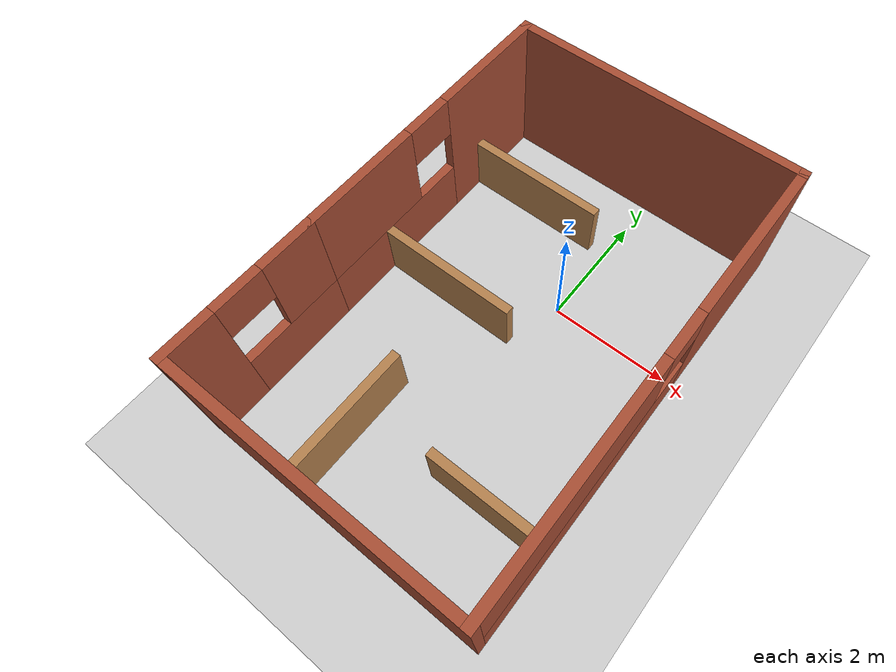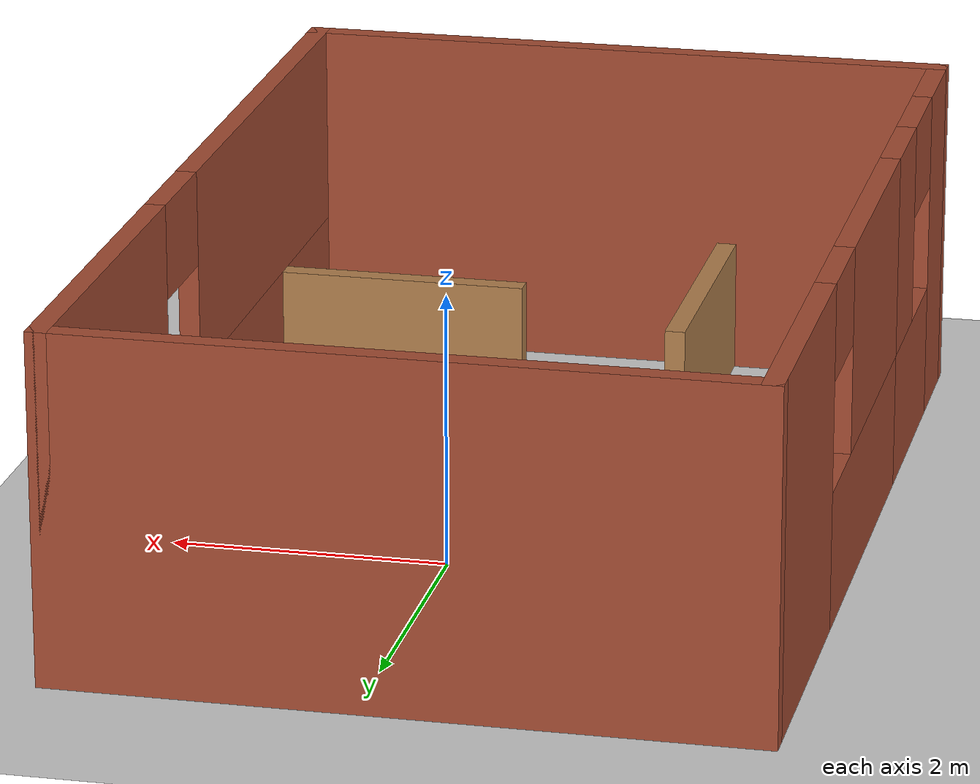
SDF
<sdf version="1.7">
 <world name="default">
  <light name="sun" type="directional">
   <pose>0 0 10 0 -0 0</pose>
   <diffuse>0.8 0.8 0.8 1</diffuse>
   <specular>0.2 0.2 0.2 1</specular>
   <attenuation>
    <range>1000</range>
    <constant>0.9</constant>
    <linear>0.01</linear>
    <quadratic>0.001</quadratic>
   </attenuation>
   <direction>-0.5 0.1 -0.9</direction>
   <spot><inner_angle>0</inner_angle><outer_angle>0</outer_angle><falloff>0</falloff></spot>
  </light>
  <model name="ground_plane">
   <static>1</static>
   <link name="link">
    <collision name="collision">
     <geometry><plane><normal>0 0 1</normal><size>100 100</size></plane></geometry>
     <surface><friction><ode><mu>100</mu><mu2>50</mu2></ode></friction></surface>
    </collision>
    <visual name="visual">
     <cast_shadows>0</cast_shadows>
     <geometry><plane><normal>0 0 1</normal><size>100 100</size></plane></geometry>
     <material>
      <script><uri>file://media/materials/scripts/gazebo.material</uri><name>Gazebo/Grey</name></script>
     </material>
    </visual>
   </link>
  </model>
  <gravity>0 0 -9.8</gravity>
  <magnetic_field>6e-06 2.3e-05 -4.2e-05</magnetic_field>
  <atmosphere type="adiabatic"/>
  <physics type="ode">
   <max_step_size>0.001</max_step_size>
   <real_time_factor>1</real_time_factor>
   <real_time_update_rate>1000</real_time_update_rate>
  </physics>
  <scene><ambient>0.4 0.4 0.4 1</ambient><background>0.7 0.7 0.7 1</background><shadows>1</shadows></scene>
  <audio><device>default</device></audio>
  <spherical_coordinates>
   <surface_model>EARTH_WGS84</surface_model>
   <latitude_deg>0</latitude_deg>
   <longitude_deg>0</longitude_deg>
   <elevation>0</elevation>
   <heading_deg>0</heading_deg>
  </spherical_coordinates>
  <model name="small_warehouse">
   <pose>-0.32708 -0.490908 0 0 -0 0</pose>
   <link name="Wall_0">
    <pose>-2.425 0.7425 0 0 -0 -1.5708</pose>
    <visual name="Wall_0_Visual_0">
     <pose>-1.45023 0 1.25 0 -0 0</pose>
     <geometry><box><size>2.09953 0.15 2.5</size></box></geometry>
     <material>
      <script><uri>file://media/materials/scripts/gazebo.material</uri><name>Gazebo/Bricks</name></script>
      <ambient>1 1 1 1</ambient>
     </material>
     <meta><layer>0</layer></meta>
    </visual>
    <collision name="Wall_0_Collision_0">
     <geometry><box><size>2.09953 0.15 2.5</size></box></geometry>
     <pose>-1.45023 0 1.25 0 -0 0</pose>
    </collision>
    <visual name="Wall_0_Visual_1">
     <pose>1.04977 0 0.5 0 -0 0</pose>
     <geometry><box><size>2.90047 0.15 1</size></box></geometry>
     <material>
      <script><uri>file://media/materials/scripts/gazebo.material</uri><name>Gazebo/Bricks</name></script>
      <ambient>1 1 1 1</ambient>
     </material>
     <meta><layer>0</layer></meta>
    </visual>
    <collision name="Wall_0_Collision_1">
     <geometry><box><size>2.90047 0.15 1</size></box></geometry>
     <pose>1.04977 0 0.5 0 -0 0</pose>
    </collision>
    <visual name="Wall_0_Visual_2">
     <pose>1.44977 0 1.75 0 -0 0</pose>
     <geometry><box><size>2.10046 0.15 1.5</size></box></geometry>
     <material>
      <script><uri>file://media/materials/scripts/gazebo.material</uri><name>Gazebo/Bricks</name></script>
      <ambient>1 1 1 1</ambient>
     </material>
     <meta><layer>0</layer></meta>
    </visual>
    <collision name="Wall_0_Collision_2">
     <geometry><box><size>2.10046 0.15 1.5</size></box></geometry>
     <pose>1.44977 0 1.75 0 -0 0</pose>
    </collision>
    <visual name="Wall_0_Visual_3">
     <pose>-0.000465 0 2.15 0 -0 0</pose>
     <geometry><box><size>0.8 0.15 0.7</size></box></geometry>
     <material>
      <script><uri>file://media/materials/scripts/gazebo.material</uri><name>Gazebo/Bricks</name></script>
      <ambient>1 1 1 1</ambient>
     </material>
     <meta><layer>0</layer></meta>
    </visual>
    <collision name="Wall_0_Collision_3">
     <geometry><box><size>0.8 0.15 0.7</size></box></geometry>
     <pose>-0.000465 0 2.15 0 -0 0</pose>
    </collision>
   </link>
   <link name="Wall_11">
    <collision name="Wall_11_Collision">
     <geometry><box><size>2.5 0.15 1</size></box></geometry>
     <pose>0 0 0.5 0 -0 0</pose>
    </collision>
    <visual name="Wall_11_Visual">
     <pose>0 0 0.5 0 -0 0</pose>
     <geometry><box><size>2.5 0.15 1</size></box></geometry>
     <material>
      <script><uri>file://media/materials/scripts/gazebo.material</uri><name>Gazebo/Wood</name></script>
      <ambient>1 1 1 1</ambient>
     </material>
     <meta><layer>0</layer></meta>
    </visual>
    <pose>-1.214 1.8425 0 0 -0 0</pose>
   </link>
   <link name="Wall_13">
    <collision name="Wall_13_Collision">
     <geometry><box><size>2.5 0.15 1</size></box></geometry>
     <pose>0 0 0.5 0 -0 0</pose>
    </collision>
    <visual name="Wall_13_Visual">
     <pose>0 0 0.5 0 -0 0</pose>
     <geometry><box><size>2.5 0.15 1</size></box></geometry>
     <material>
      <script><uri>file://media/materials/scripts/gazebo.material</uri><name>Gazebo/Wood</name></script>
      <ambient>1 1 1 1</ambient>
     </material>
     <meta><layer>0</layer></meta>
    </visual>
    <pose>-1.21614 -0.4185 0 0 -0 0</pose>
   </link>
   <link name="Wall_15">
    <collision name="Wall_15_Collision">
     <geometry><box><size>2.25 0.15 1</size></box></geometry>
     <pose>0 0 0.5 0 -0 0</pose>
    </collision>
    <visual name="Wall_15_Visual">
     <pose>0 0 0.5 0 -0 0</pose>
     <geometry><box><size>2.25 0.15 1</size></box></geometry>
     <material>
      <script><uri>file://media/materials/scripts/gazebo.material</uri><name>Gazebo/Wood</name></script>
      <ambient>1 1 1 1</ambient>
     </material>
     <meta><layer>0</layer></meta>
    </visual>
    <pose>-0.829 -3.0825 0 0 -0 -1.5708</pose>
   </link>
   <link name="Wall_17">
    <collision name="Wall_17_Collision">
     <geometry><box><size>2 0.15 1</size></box></geometry>
     <pose>0 0 0.5 0 -0 0</pose>
    </collision>
    <visual name="Wall_17_Visual">
     <pose>0 0 0.5 0 -0 0</pose>
     <geometry><box><size>2 0.15 1</size></box></geometry>
     <material>
      <script><uri>file://media/materials/scripts/gazebo.material</uri><name>Gazebo/Wood</name></script>
      <ambient>1 1 1 1</ambient>
     </material>
     <meta><layer>0</layer></meta>
    </visual>
    <pose>1.485 -2.7725 0 0 -0 0</pose>
   </link>
   <link name="Wall_2">
    <collision name="Wall_2_Collision">
     <geometry><box><size>5 0.15 2.5</size></box></geometry>
     <pose>0 0 1.25 0 -0 0</pose>
    </collision>
    <visual name="Wall_2_Visual">
     <pose>0 0 1.25 0 -0 0</pose>
     <geometry><box><size>5 0.15 2.5</size></box></geometry>
     <material>
      <script><uri>file://media/materials/scripts/gazebo.material</uri><name>Gazebo/Bricks</name></script>
      <ambient>1 1 1 1</ambient>
     </material>
     <meta><layer>0</layer></meta>
    </visual>
    <pose>0 3.1675 0 0 -0 0</pose>
   </link>
   <link name="Wall_4">
    <pose>2.425 -0.5075 0 0 -0 -1.5708</pose>
    <visual name="Wall_4_Visual_0">
     <pose>-2.34171 0 1.25 0 -0 0</pose>
     <geometry><box><size>2.81658 0.15 2.5</size></box></geometry>
     <material>
      <script><uri>file://media/materials/scripts/gazebo.material</uri><name>Gazebo/Bricks</name></script>
      <ambient>1 1 1 1</ambient>
     </material>
     <meta><layer>0</layer></meta>
    </visual>
    <collision name="Wall_4_Collision_0">
     <geometry><box><size>2.81658 0.15 2.5</size></box></geometry>
     <pose>-2.34171 0 1.25 0 -0 0</pose>
    </collision>
    <visual name="Wall_4_Visual_1">
     <pose>1.40829 0 0.5 0 -0 0</pose>
     <geometry><box><size>4.68342 0.15 1</size></box></geometry>
     <material>
      <script><uri>file://media/materials/scripts/gazebo.material</uri><name>Gazebo/Bricks</name></script>
      <ambient>1 1 1 1</ambient>
     </material>
     <meta><layer>0</layer></meta>
    </visual>
    <collision name="Wall_4_Collision_1">
     <geometry><box><size>4.68342 0.15 1</size></box></geometry>
     <pose>1.40829 0 0.5 0 -0 0</pose>
    </collision>
    <visual name="Wall_4_Visual_2">
     <pose>1.80829 0 1.75 0 -0 0</pose>
     <geometry><box><size>3.88342 0.15 1.5</size></box></geometry>
     <material>
      <script><uri>file://media/materials/scripts/gazebo.material</uri><name>Gazebo/Bricks</name></script>
      <ambient>1 1 1 1</ambient>
     </material>
     <meta><layer>0</layer></meta>
    </visual>
    <collision name="Wall_4_Collision_2">
     <geometry><box><size>3.88342 0.15 1.5</size></box></geometry>
     <pose>1.80829 0 1.75 0 -0 0</pose>
    </collision>
    <visual name="Wall_4_Visual_3">
     <pose>-0.533416 0 2.15 0 -0 0</pose>
     <geometry><box><size>0.8 0.15 0.7</size></box></geometry>
     <material>
      <script><uri>file://media/materials/scripts/gazebo.material</uri><name>Gazebo/Bricks</name></script>
      <ambient>1 1 1 1</ambient>
     </material>
     <meta><layer>0</layer></meta>
    </visual>
    <collision name="Wall_4_Collision_3">
     <geometry><box><size>0.8 0.15 0.7</size></box></geometry>
     <pose>-0.533416 0 2.15 0 -0 0</pose>
    </collision>
   </link>
   <link name="Wall_6">
    <collision name="Wall_6_Collision">
     <geometry><box><size>5 0.15 2.5</size></box></geometry>
     <pose>0 0 1.25 0 -0 0</pose>
    </collision>
    <visual name="Wall_6_Visual">
     <pose>0 0 1.25 0 -0 0</pose>
     <geometry><box><size>5 0.15 2.5</size></box></geometry>
     <material>
      <script><uri>file://media/materials/scripts/gazebo.material</uri><name>Gazebo/Bricks</name></script>
      <ambient>1 1 1 1</ambient>
     </material>
     <meta><layer>0</layer></meta>
    </visual>
    <pose>0 -4.1825 0 0 -0 3.14159</pose>
   </link>
   <link name="Wall_7">
    <pose>-2.425 -2.9325 0 0 -0 1.5708</pose>
    <visual name="Wall_7_Visual_0">
     <pose>-0.875216 0 1.25 0 -0 0</pose>
     <geometry><box><size>0.899568 0.15 2.5</size></box></geometry>
     <material>
      <script><uri>file://media/materials/scripts/gazebo.material</uri><name>Gazebo/Bricks</name></script>
      <ambient>1 1 1 1</ambient>
     </material>
     <meta><layer>0</layer></meta>
    </visual>
    <collision name="Wall_7_Collision_0">
     <geometry><box><size>0.899568 0.15 2.5</size></box></geometry>
     <pose>-0.875216 0 1.25 0 -0 0</pose>
    </collision>
    <visual name="Wall_7_Visual_1">
     <pose>0.449784 0 0.5 0 -0 0</pose>
     <geometry><box><size>1.75043 0.15 1</size></box></geometry>
     <material>
      <script><uri>file://media/materials/scripts/gazebo.material</uri><name>Gazebo/Bricks</name></script>
      <ambient>1 1 1 1</ambient>
     </material>
     <meta><layer>0</layer></meta>
    </visual>
    <collision name="Wall_7_Collision_1">
     <geometry><box><size>1.75043 0.15 1</size></box></geometry>
     <pose>0.449784 0 0.5 0 -0 0</pose>
    </collision>
    <visual name="Wall_7_Visual_2">
     <pose>0.849784 0 1.75 0 -0 0</pose>
     <geometry><box><size>0.950432 0.15 1.5</size></box></geometry>
     <material>
      <script><uri>file://media/materials/scripts/gazebo.material</uri><name>Gazebo/Bricks</name></script>
      <ambient>1 1 1 1</ambient>
     </material>
     <meta><layer>0</layer></meta>
    </visual>
    <collision name="Wall_7_Collision_2">
     <geometry><box><size>0.950432 0.15 1.5</size></box></geometry>
     <pose>0.849784 0 1.75 0 -0 0</pose>
    </collision>
    <visual name="Wall_7_Visual_3">
     <pose>-0.025432 0 2.15 0 -0 0</pose>
     <geometry><box><size>0.8 0.15 0.7</size></box></geometry>
     <material>
      <script><uri>file://media/materials/scripts/gazebo.material</uri><name>Gazebo/Bricks</name></script>
      <ambient>1 1 1 1</ambient>
     </material>
     <meta><layer>0</layer></meta>
    </visual>
    <collision name="Wall_7_Collision_3">
     <geometry><box><size>0.8 0.15 0.7</size></box></geometry>
     <pose>-0.025432 0 2.15 0 -0 0</pose>
    </collision>
   </link>
   <static>1</static>
  </model>
 </world>
</sdf>
